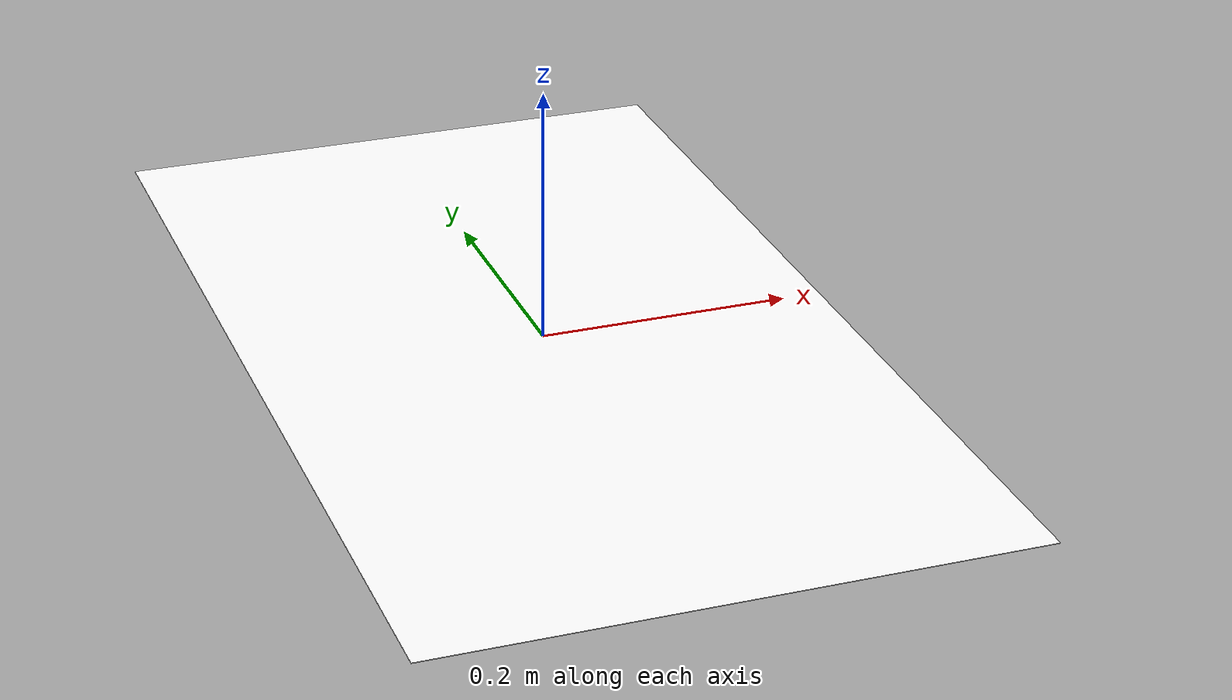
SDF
<?xml version='1.0'?>
<sdf version='1.6'>
  <model name='race_track4'>
    <static>true</static>
    <link name='link'>
      <visual name='visual'>
        <geometry>
          <box>
            <size>0.460 0.819 0.000553</size>
          </box>
        </geometry>
        <material>
          <script>
            <name>RaceTrack4/track4</name>
	    <uri>model://racetrack4/materials/scripts</uri>
            <uri>model://racetrack4/materials/textures</uri>
          </script>
          <ambient>1 1 1 1</ambient>
          <diffuse>1 1 1 1</diffuse>
          <specular>0.01 0.01 0.01 1</specular>
          <emissive>1 1 1 1</emissive>
        </material>
        <transparency>0</transparency>
      </visual>
      <collision name='collision'>
        <geometry>
          <box>
            <size>0.460 0.819 0.000553</size>
          </box>
        </geometry>
	<surface>
          <friction>
            <ode>
              <mu>100</mu>
              <mu2>50</mu2>
            </ode>
          </friction>
        </surface>
      </collision>
    </link>
  </model>
</sdf>
